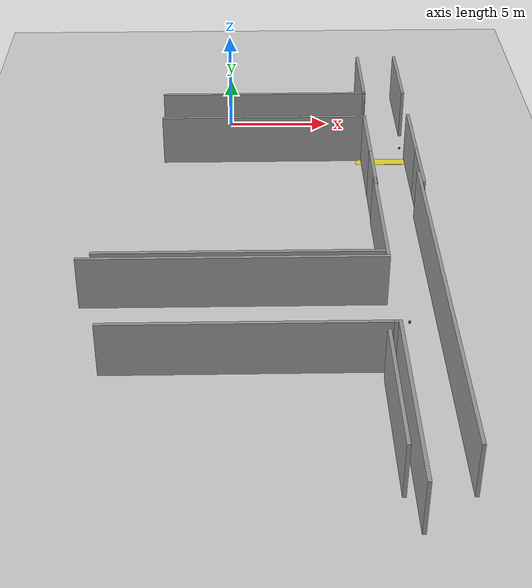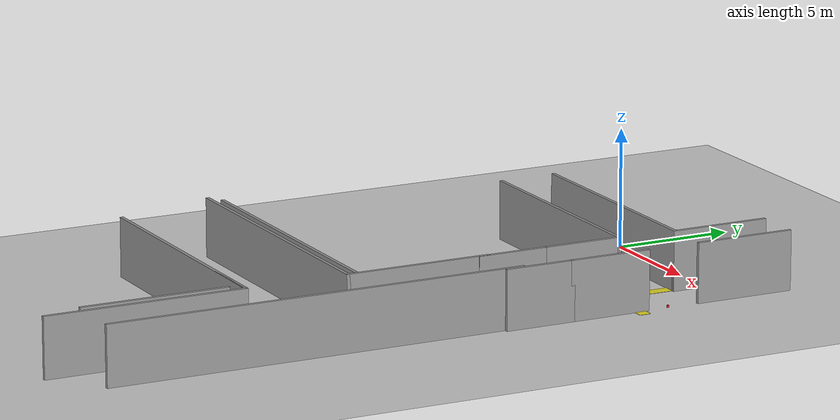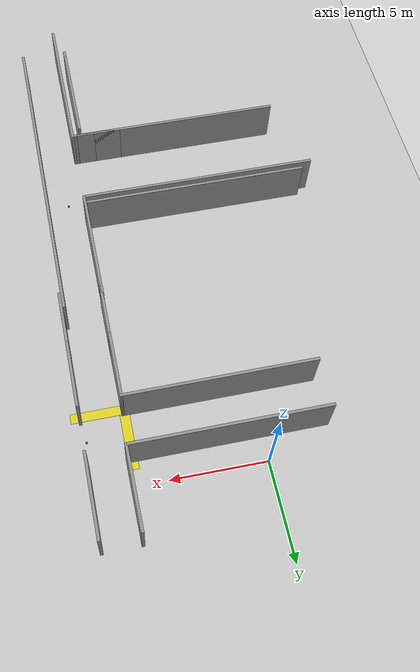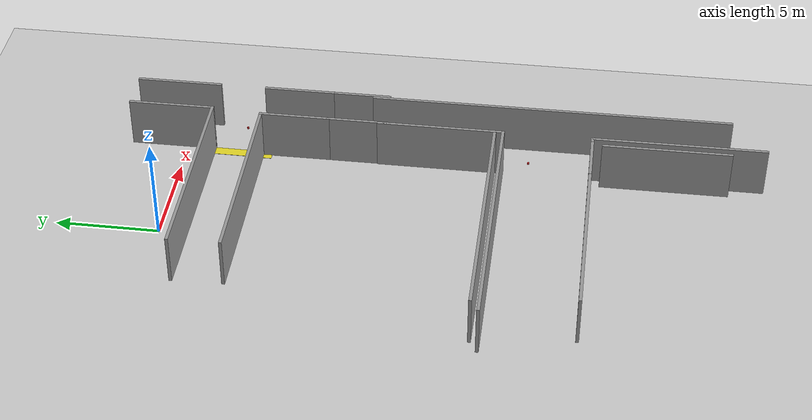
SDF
<sdf version="1.7">
 <world name="default">
  <plugin name="gazebo_ros_state" filename="libgazebo_ros_state.so">
   <publish_nested_model_pose>1</publish_nested_model_pose>
  </plugin>
  <light name="sun" type="directional">
   <pose>0 0 10 0 -0 0</pose>
   <diffuse>0.8 0.8 0.8 1</diffuse>
   <specular>0.2 0.2 0.2 1</specular>
   <attenuation>
    <range>1000</range>
    <constant>0.9</constant>
    <linear>0.01</linear>
    <quadratic>0.001</quadratic>
   </attenuation>
   <direction>-0.5 0.1 -0.9</direction>
   <spot><inner_angle>0</inner_angle><outer_angle>0</outer_angle><falloff>0</falloff></spot>
  </light>
  <model name="ground">
   <static>1</static>
   <link name="ground_link">
    <collision name="ground_collision">
     <geometry><plane><size>1000 1000</size><normal>0 0 1</normal></plane></geometry>
    </collision>
    <visual name="ground_visual">
     <geometry><plane><size>1000 1000</size><normal>0 0 1</normal></plane></geometry>
     <material>
      <script><uri>file://media/materials/scripts/gazebo.material</uri><name>Gazebo/Grey</name></script>
     </material>
    </visual>
   </link>
  </model>
  <gravity>0 0 -9.8</gravity>
  <physics type="ode">
   <max_step_size>0.001</max_step_size>
   <real_time_factor>1</real_time_factor>
   <real_time_update_rate>1000</real_time_update_rate>
  </physics>
  <scene><ambient>0.4 0.4 0.4 1</ambient><background>0.7 0.7 0.7 1</background><shadows>1</shadows></scene>
  <audio><device>default</device></audio>
  <magnetic_field>6e-06 2.3e-05 -4.2e-05</magnetic_field>
  <atmosphere type="adiabatic"/>
  <spherical_coordinates>
   <surface_model>EARTH_WGS84</surface_model>
   <latitude_deg>0</latitude_deg>
   <longitude_deg>0</longitude_deg>
   <elevation>0</elevation>
   <heading_deg>0</heading_deg>
  </spherical_coordinates>
  <model name="Untitled">
   <pose>1.22089 -12.8407 0 0 -0 0</pose>
   <link name="Wall_0">
    <collision name="Wall_0_Collision">
     <geometry><box><size>10 0.15 2.5</size></box></geometry>
     <pose>0 0 1.25 0 -0 0</pose>
    </collision>
    <visual name="Wall_0_Visual">
     <pose>0 0 1.25 0 -0 0</pose>
     <geometry><box><size>10 0.15 2.5</size></box></geometry>
     <material>
      <script><uri>file://media/materials/scripts/gazebo.material</uri><name>Gazebo/Grey</name></script>
      <ambient>1 1 1 1</ambient>
     </material>
     <meta><layer>0</layer></meta>
    </visual>
    <pose>0.434112 9.05074 0 0 -0 0</pose>
   </link>
   <link name="Wall_10">
    <collision name="Wall_10_Collision">
     <geometry><box><size>3.5 0.15 2.5</size></box></geometry>
     <pose>0 0 1.25 0 -0 0</pose>
    </collision>
    <visual name="Wall_10_Visual">
     <pose>0 0 1.25 0 -0 0</pose>
     <geometry><box><size>3.5 0.15 2.5</size></box></geometry>
     <material>
      <script><uri>file://media/materials/scripts/gazebo.material</uri><name>Gazebo/Grey</name></script>
      <ambient>1 1 1 1</ambient>
     </material>
     <meta><layer>0</layer></meta>
    </visual>
    <pose>5.35911 7.37574 0 0 -0 -1.5708</pose>
   </link>
   <link name="Wall_13">
    <collision name="Wall_13_Collision">
     <geometry><box><size>3 0.15 2.5</size></box></geometry>
     <pose>0 0 1.25 0 -0 0</pose>
    </collision>
    <visual name="Wall_13_Visual">
     <pose>0 0 1.25 0 -0 0</pose>
     <geometry><box><size>3 0.15 2.5</size></box></geometry>
     <material>
      <script><uri>file://media/materials/scripts/gazebo.material</uri><name>Gazebo/Grey</name></script>
      <ambient>1 1 1 1</ambient>
     </material>
     <meta><layer>0</layer></meta>
    </visual>
    <pose>5.35911 4.27574 0 0 -0 -1.5708</pose>
   </link>
   <link name="Wall_15">
    <collision name="Wall_15_Collision">
     <geometry><box><size>3 0.15 2.5</size></box></geometry>
     <pose>0 0 1.25 0 -0 0</pose>
    </collision>
    <visual name="Wall_15_Visual">
     <pose>0 0 1.25 0 -0 0</pose>
     <geometry><box><size>3 0.15 2.5</size></box></geometry>
     <material>
      <script><uri>file://media/materials/scripts/gazebo.material</uri><name>Gazebo/Grey</name></script>
      <ambient>1 1 1 1</ambient>
     </material>
     <meta><layer>0</layer></meta>
    </visual>
    <pose>7.52465 4.35844 0 0 -0 -1.5708</pose>
   </link>
   <link name="Wall_17">
    <collision name="Wall_17_Collision">
     <geometry><box><size>6.25 0.15 2.5</size></box></geometry>
     <pose>0 0 1.25 0 -0 0</pose>
    </collision>
    <visual name="Wall_17_Visual">
     <pose>0 0 1.25 0 -0 0</pose>
     <geometry><box><size>6.25 0.15 2.5</size></box></geometry>
     <material>
      <script><uri>file://media/materials/scripts/gazebo.material</uri><name>Gazebo/Grey</name></script>
      <ambient>1 1 1 1</ambient>
     </material>
     <meta><layer>0</layer></meta>
    </visual>
    <pose>5.32535 0.137353 0 0 -0 -1.5708</pose>
   </link>
   <link name="Wall_19">
    <collision name="Wall_19_Collision">
     <geometry><box><size>17.75 0.15 2.5</size></box></geometry>
     <pose>0 0 1.25 0 -0 0</pose>
    </collision>
    <visual name="Wall_19_Visual">
     <pose>0 0 1.25 0 -0 0</pose>
     <geometry><box><size>17.75 0.15 2.5</size></box></geometry>
     <material>
      <script><uri>file://media/materials/scripts/gazebo.material</uri><name>Gazebo/Grey</name></script>
      <ambient>1 1 1 1</ambient>
     </material>
     <meta><layer>0</layer></meta>
    </visual>
    <pose>7.3833 -5.13773 0 0 -0 -1.5708</pose>
   </link>
   <link name="Wall_2">
    <collision name="Wall_2_Collision">
     <geometry><box><size>10.25 0.15 2.5</size></box></geometry>
     <pose>0 0 1.25 0 -0 0</pose>
    </collision>
    <visual name="Wall_2_Visual">
     <pose>0 0 1.25 0 -0 0</pose>
     <geometry><box><size>10.25 0.15 2.5</size></box></geometry>
     <material>
      <script><uri>file://media/materials/scripts/gazebo.material</uri><name>Gazebo/Grey</name></script>
      <ambient>1 1 1 1</ambient>
     </material>
     <meta><layer>0</layer></meta>
    </visual>
    <pose>0.509112 11.5107 0 0 -0 0</pose>
   </link>
   <link name="Wall_21">
    <collision name="Wall_21_Collision">
     <geometry><box><size>6.25 0.15 2.5</size></box></geometry>
     <pose>0 0 1.25 0 -0 0</pose>
    </collision>
    <visual name="Wall_21_Visual">
     <pose>0 0 1.25 0 -0 0</pose>
     <geometry><box><size>6.25 0.15 2.5</size></box></geometry>
     <material>
      <script><uri>file://media/materials/scripts/gazebo.material</uri><name>Gazebo/Grey</name></script>
      <ambient>1 1 1 1</ambient>
     </material>
     <meta><layer>0</layer></meta>
    </visual>
    <pose>4.85043 -10.8595 0 0 -0 1.5708</pose>
   </link>
   <link name="Wall_23">
    <collision name="Wall_23_Collision">
     <geometry><box><size>12.25 0.15 2.5</size></box></geometry>
     <pose>0 0 1.25 0 -0 0</pose>
    </collision>
    <visual name="Wall_23_Visual">
     <pose>0 0 1.25 0 -0 0</pose>
     <geometry><box><size>12.25 0.15 2.5</size></box></geometry>
     <material>
      <script><uri>file://media/materials/scripts/gazebo.material</uri><name>Gazebo/Grey</name></script>
      <ambient>1 1 1 1</ambient>
     </material>
     <meta><layer>0</layer></meta>
    </visual>
    <pose>-0.882958 -2.51161 0 0 -0 3.14159</pose>
   </link>
   <link name="Wall_25">
    <collision name="Wall_25_Collision">
     <geometry><box><size>8.5 0.15 2.5</size></box></geometry>
     <pose>0 0 1.25 0 -0 0</pose>
    </collision>
    <visual name="Wall_25_Visual">
     <pose>0 0 1.25 0 -0 0</pose>
     <geometry><box><size>8.5 0.15 2.5</size></box></geometry>
     <material>
      <script><uri>file://media/materials/scripts/gazebo.material</uri><name>Gazebo/Grey</name></script>
      <ambient>1 1 1 1</ambient>
     </material>
     <meta><layer>0</layer></meta>
    </visual>
    <pose>5.32535 -11.4357 0 0 -0 -1.5708</pose>
   </link>
   <link name="Wall_27">
    <collision name="Wall_27_Collision">
     <geometry><box><size>11.5 0.15 2.5</size></box></geometry>
     <pose>0 0 1.25 0 -0 0</pose>
    </collision>
    <visual name="Wall_27_Visual">
     <pose>0 0 1.25 0 -0 0</pose>
     <geometry><box><size>11.5 0.15 2.5</size></box></geometry>
     <material>
      <script><uri>file://media/materials/scripts/gazebo.material</uri><name>Gazebo/Grey</name></script>
      <ambient>1 1 1 1</ambient>
     </material>
     <meta><layer>0</layer></meta>
    </visual>
    <pose>-0.666262 -7.26074 0 0 -0 3.14159</pose>
   </link>
   <link name="Wall_29">
    <collision name="Wall_29_Collision">
     <geometry><box><size>2.5 0.15 2.5</size></box></geometry>
     <pose>0 0 1.25 0 -0 0</pose>
    </collision>
    <visual name="Wall_29_Visual">
     <pose>0 0 1.25 0 -0 0</pose>
     <geometry><box><size>2.5 0.15 2.5</size></box></geometry>
     <material>
      <script><uri>file://media/materials/scripts/gazebo.material</uri><name>Gazebo/Grey</name></script>
      <ambient>1 1 1 1</ambient>
     </material>
     <meta><layer>0</layer></meta>
    </visual>
    <pose>3.83374 -7.26074 0 0 -0 3.14159</pose>
   </link>
   <link name="Wall_31">
    <collision name="Wall_31_Collision">
     <geometry><box><size>1 0.15 2.5</size></box></geometry>
     <pose>0 0 1.25 0 -0 0</pose>
    </collision>
    <visual name="Wall_31_Visual">
     <pose>0 0 1.25 0 -0 0</pose>
     <geometry><box><size>1 0.15 2.5</size></box></geometry>
     <material>
      <script><uri>file://media/materials/scripts/gazebo.material</uri><name>Gazebo/Grey</name></script>
      <ambient>1 1 1 1</ambient>
     </material>
     <meta><layer>0</layer></meta>
    </visual>
    <pose>4.58374 -7.26074 0 0 -0 3.14159</pose>
   </link>
   <link name="Wall_33">
    <collision name="Wall_33_Collision">
     <geometry><box><size>2.81661 0.15 2.5</size></box></geometry>
     <pose>0 0 1.25 0 -0 0</pose>
    </collision>
    <visual name="Wall_33_Visual">
     <pose>0 0 1.25 0 -0 0</pose>
     <geometry><box><size>2.81661 0.15 2.5</size></box></geometry>
     <material>
      <script><uri>file://media/materials/scripts/gazebo.material</uri><name>Gazebo/Grey</name></script>
      <ambient>1 1 1 1</ambient>
     </material>
     <meta><layer>0</layer></meta>
    </visual>
    <pose>3.99204 -7.26074 0 0 -0 3.14159</pose>
   </link>
   <link name="Wall_35">
    <collision name="Wall_35_Collision">
     <geometry><box><size>13 0.15 2.5</size></box></geometry>
     <pose>0 0 1.25 0 -0 0</pose>
    </collision>
    <visual name="Wall_35_Visual">
     <pose>0 0 1.25 0 -0 0</pose>
     <geometry><box><size>13 0.15 2.5</size></box></geometry>
     <material>
      <script><uri>file://media/materials/scripts/gazebo.material</uri><name>Gazebo/Grey</name></script>
      <ambient>1 1 1 1</ambient>
     </material>
     <meta><layer>0</layer></meta>
    </visual>
    <pose>-1.09965 -2.91265 0 0 -0 3.14159</pose>
   </link>
   <link name="Wall_4">
    <collision name="Wall_4_Collision">
     <geometry><box><size>4.25 0.15 2.5</size></box></geometry>
     <pose>0 0 1.25 0 -0 0</pose>
    </collision>
    <visual name="Wall_4_Visual">
     <pose>0 0 1.25 0 -0 0</pose>
     <geometry><box><size>4.25 0.15 2.5</size></box></geometry>
     <material>
      <script><uri>file://media/materials/scripts/gazebo.material</uri><name>Gazebo/Grey</name></script>
      <ambient>1 1 1 1</ambient>
     </material>
     <meta><layer>0</layer></meta>
    </visual>
    <pose>5.55911 13.5607 0 0 -0 1.5708</pose>
   </link>
   <link name="Wall_6">
    <collision name="Wall_6_Collision">
     <geometry><box><size>4.25 0.15 2.5</size></box></geometry>
     <pose>0 0 1.25 0 -0 0</pose>
    </collision>
    <visual name="Wall_6_Visual">
     <pose>0 0 1.25 0 -0 0</pose>
     <geometry><box><size>4.25 0.15 2.5</size></box></geometry>
     <material>
      <script><uri>file://media/materials/scripts/gazebo.material</uri><name>Gazebo/Grey</name></script>
      <ambient>1 1 1 1</ambient>
     </material>
     <meta><layer>0</layer></meta>
    </visual>
    <pose>7.52465 13.5568 0 0 -0 1.5708</pose>
   </link>
   <link name="Wall_8">
    <collision name="Wall_8_Collision">
     <geometry><box><size>3.5 0.15 2.5</size></box></geometry>
     <pose>0 0 1.25 0 -0 0</pose>
    </collision>
    <visual name="Wall_8_Visual">
     <pose>0 0 1.25 0 -0 0</pose>
     <geometry><box><size>3.5 0.15 2.5</size></box></geometry>
     <material>
      <script><uri>file://media/materials/scripts/gazebo.material</uri><name>Gazebo/Grey</name></script>
      <ambient>1 1 1 1</ambient>
     </material>
     <meta><layer>0</layer></meta>
    </visual>
    <pose>7.52465 7.45844 0 0 -0 -1.5708</pose>
   </link>
   <static>1</static>
  </model>
  <model name="d0_6a_d2_02_42_eb">
   <static>1</static>
   <link name="link">
    <visual name="beacon_visual">
     <geometry><cylinder><radius>0.05</radius><length>0.1</length></cylinder></geometry>
     <material>
      <script><uri>file://media/materials/scripts/gazebo.material</uri><name>Gazebo/Red</name></script>
     </material>
    </visual>
   </link>
   <pose>8.59935 -2.66174 0 0 -0 0</pose>
  </model>
  <model name="df_2b_70_a8_21_90">
   <static>1</static>
   <link name="link">
    <visual name="beacon_visual">
     <geometry><cylinder><radius>0.05</radius><length>0.1</length></cylinder></geometry>
     <material>
      <script><uri>file://media/materials/scripts/gazebo.material</uri><name>Gazebo/Red</name></script>
     </material>
    </visual>
   </link>
   <pose>7.4228 -17.0286 0 0 -0 0</pose>
  </model>
  <model name="intersection_marker">
   <static>1</static>
   <pose>7.72636 -4.03141 0.01 0 -0 0</pose>
   <link name="link">
    <visual name="visual">
     <geometry><box><size>3 0.5 0.01</size></box></geometry>
     <material>
      <script><uri>file://media/materials/scripts/gazebo.material</uri><name>Gazebo/Yellow</name></script>
     </material>
    </visual>
   </link>
  </model>
  <model name="intersection_marker_0">
   <static>1</static>
   <pose>6.51255 -2.36581 0.01 0 0 -1.57799</pose>
   <link name="link">
    <visual name="visual">
     <geometry><box><size>3 0.5 0.01</size></box></geometry>
     <material>
      <script><uri>file://media/materials/scripts/gazebo.material</uri><name>Gazebo/Yellow</name></script>
     </material>
    </visual>
   </link>
  </model>
 </world>
</sdf>
